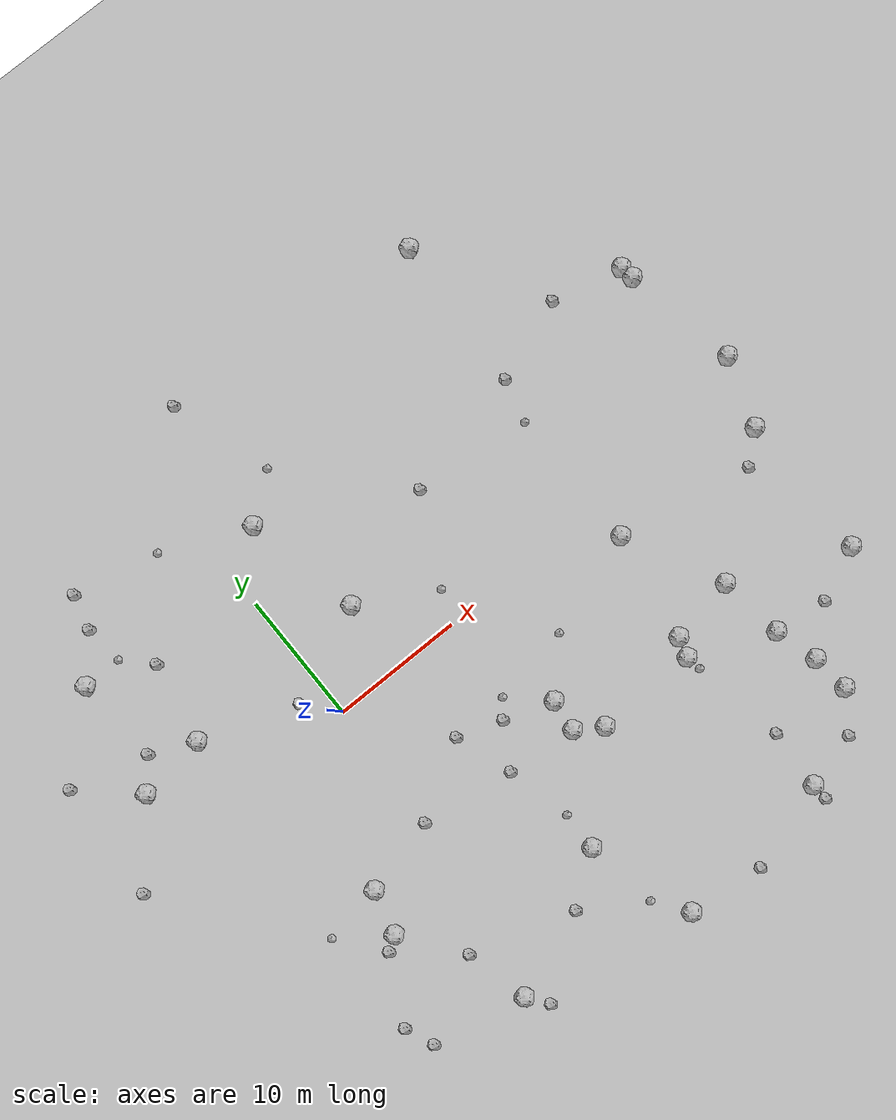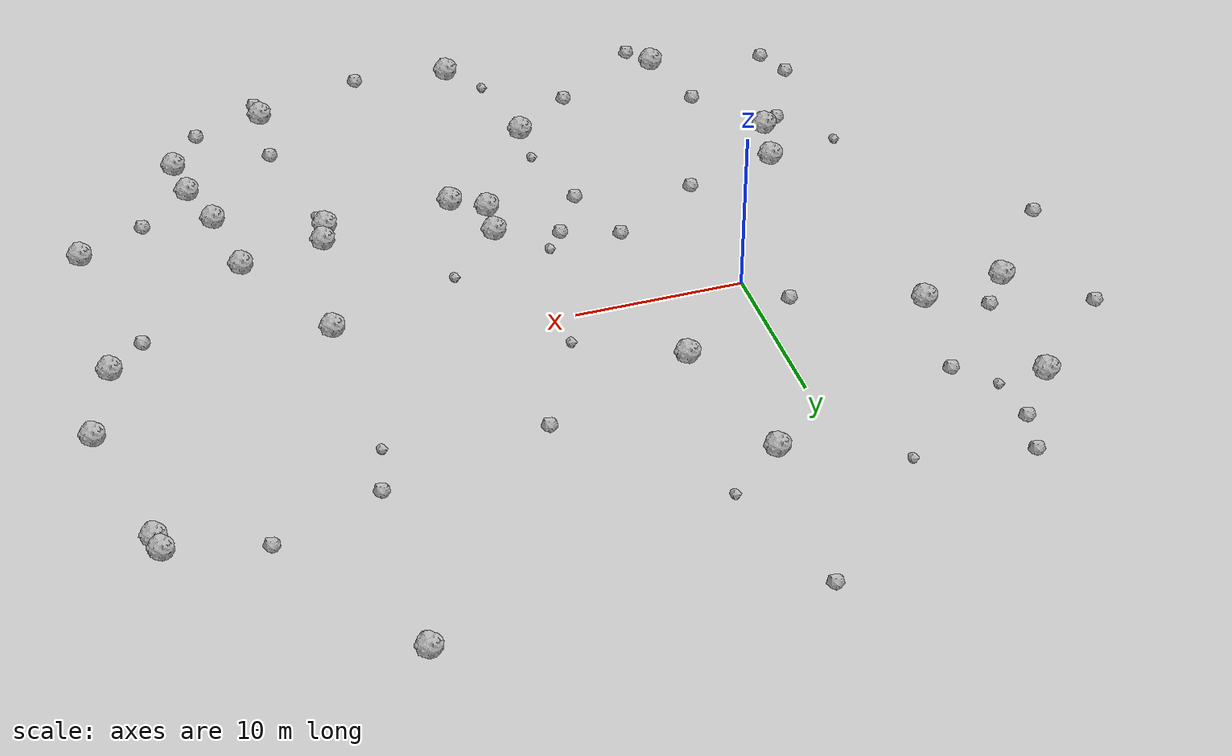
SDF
<sdf version="1.6">
 <world name="default">
  <include><uri>model://custom_ground</uri></include>
  <include><uri>model://sun</uri></include>
  <model name="rock1_0_0">
   <include><uri>model://rock1</uri><pose>10.353534659500475 -26.485820144668452 0.5 0 0 0</pose></include>
  </model>
  <model name="rock1_0_1">
   <include><uri>model://rock1</uri><pose>25.045041076871804 23.3982828396207 0.5 0 0 0</pose></include>
  </model>
  <model name="rock1_0_2">
   <include><uri>model://rock1</uri><pose>12.26940076858321 -8.898860153860145 0.5 0 0 0</pose></include>
  </model>
  <model name="rock1_0_3">
   <include><uri>model://rock1</uri><pose>27.81129628913171 -15.08280284263276 0.5 0 0 0</pose></include>
  </model>
  <model name="rock1_0_4">
   <include><uri>model://rock1</uri><pose>3.431283467191278 14.50852252464503 0.5 0 0 0</pose></include>
  </model>
  <model name="rock1_0_5">
   <include><uri>model://rock1</uri><pose>22.76654954815104 -25.10561689154749 0.5 0 0 0</pose></include>
  </model>
  <model name="rock1_0_6">
   <include><uri>model://rock1</uri><pose>35.93048079093833 -13.789267911669828 0.5 0 0 0</pose></include>
  </model>
  <model name="rock1_0_7">
   <include><uri>model://rock1</uri><pose>36.18989034486985 12.484855941916905 0.5 0 0 0</pose></include>
  </model>
  <model name="rock1_0_8">
   <include><uri>model://rock1</uri><pose>-6.867789546782468 -14.523020029441085 0.5 0 0 0</pose></include>
  </model>
  <model name="rock1_0_9">
   <include><uri>model://rock1</uri><pose>27.181268486295245 -10.131133207365842 0.5 0 0 0</pose></include>
  </model>
  <model name="rock1_0_10">
   <include><uri>model://rock1</uri><pose>22.10241037312138 -11.004564445049201 0.5 0 0 0</pose></include>
  </model>
  <model name="rock1_0_11">
   <include><uri>model://rock1</uri><pose>-13.004976365794992 12.954975235473746 0.5 0 0 0</pose></include>
  </model>
  <model name="rock1_0_12">
   <include><uri>model://rock1</uri><pose>-14.346528407437782 4.216435102887608 0.5 0 0 0</pose></include>
  </model>
  <model name="rock1_0_13">
   <include><uri>model://rock1</uri><pose>-2.503765077275048 -23.61104823280911 0.5 0 0 0</pose></include>
  </model>
  <model name="rock1_0_14">
   <include><uri>model://rock1</uri><pose>7.764807040509602 -18.589719966027726 0.5 0 0 0</pose></include>
  </model>
  <model name="rock1_0_15">
   <include><uri>model://rock1</uri><pose>23.53524599694542 -2.7545416927854163 0.5 0 0 0</pose></include>
  </model>
  <model name="rock1_0_16">
   <include><uri>model://rock1</uri><pose>-6.015940435910574 -11.233409011737088 0.5 0 0 0</pose></include>
  </model>
  <model name="rock1_0_17">
   <include><uri>model://rock1</uri><pose>37.993736004612714 2.525454313007245 0.5 0 0 0</pose></include>
  </model>
  <model name="rock1_0_18">
   <include><uri>model://rock1</uri><pose>5.322530658452642 5.559652756705503 0.5 0 0 0</pose></include>
  </model>
  <model name="rock1_0_19">
   <include><uri>model://rock1</uri><pose>12.00117200594876 -11.327752025288607 0.5 0 0 0</pose></include>
  </model>
  <model name="rock1_0_20">
   <include><uri>model://rock1</uri><pose>36.137777541261755 -2.7672222036140113 0.5 0 0 0</pose></include>
  </model>
  <model name="rock1_0_21">
   <include><uri>model://rock1</uri><pose>28.71049018036834 -18.36087743219004 0.5 0 0 0</pose></include>
  </model>
  <model name="rock1_0_22">
   <include><uri>model://rock1</uri><pose>28.96944864342838 -21.230283381374058 0.5 0 0 0</pose></include>
  </model>
  <model name="rock1_0_23">
   <include><uri>model://rock1</uri><pose>-9.234408368107744 4.875648324954142 0.5 0 0 0</pose></include>
  </model>
  <model name="rock1_0_24">
   <include><uri>model://rock1</uri><pose>36.366016415004864 11.40311303094743 0.5 0 0 0</pose></include>
  </model>
  <model name="rock1_0_25">
   <include><uri>model://rock1</uri><pose>21.633723734797613 -12.48264653880858 0.5 0 0 0</pose></include>
  </model>
  <model name="rock1_0_26">
   <include><uri>model://rock1</uri><pose>13.9449572687124 -12.595609178173078 0.5 0 0 0</pose></include>
  </model>
  <model name="rock2_0_0">
   <include><uri>model://rock2</uri><pose>16.11125227073549 -27.221403389869614 0.3 0 0 0</pose></include>
  </model>
  <model name="rock2_0_1">
   <include><uri>model://rock2</uri><pose>6.6393150016273985 -10.85607960643862 0.3 0 0 0</pose></include>
  </model>
  <model name="rock2_0_2">
   <include><uri>model://rock2</uri><pose>-8.188503412234041 11.062225208194882 0.3 0 0 0</pose></include>
  </model>
  <model name="rock2_0_3">
   <include><uri>model://rock2</uri><pose>30.712658321103184 13.78832300893847 0.3 0 0 0</pose></include>
  </model>
  <model name="rock2_0_4">
   <include><uri>model://rock2</uri><pose>-9.737667927949614 18.7649281970646 0.3 0 0 0</pose></include>
  </model>
  <model name="rock2_0_5">
   <include><uri>model://rock2</uri><pose>-18.92363509248398 -1.1414484592653054 0.3 0 0 0</pose></include>
  </model>
  <model name="rock2_0_6">
   <include><uri>model://rock2</uri><pose>-10.429916431454611 -20.04988269685863 0.3 0 0 0</pose></include>
  </model>
  <model name="rock2_0_7">
   <include><uri>model://rock2</uri><pose>-1.4148860128047325 -25.180633476344806 0.3 0 0 0</pose></include>
  </model>
  <model name="rock2_0_8">
   <include><uri>model://rock2</uri><pose>4.052366331668583 -21.295080060732403 0.3 0 0 0</pose></include>
  </model>
  <model name="rock2_0_9">
   <include><uri>model://rock2</uri><pose>-10.431789595978875 16.08690875752712 0.3 0 0 0</pose></include>
  </model>
  <model name="rock2_0_10">
   <include><uri>model://rock2</uri><pose>4.358529456318948 25.097020412433757 0.3 0 0 0</pose></include>
  </model>
  <model name="rock2_0_11">
   <include><uri>model://rock2</uri><pose>23.083309696370343 -20.692071618297007 0.3 0 0 0</pose></include>
  </model>
  <model name="rock2_0_12">
   <include><uri>model://rock2</uri><pose>31.910488822555095 -15.622460306529824 0.3 0 0 0</pose></include>
  </model>
  <model name="rock2_0_13">
   <include><uri>model://rock2</uri><pose>-7.985096026481397 -15.2279728868045 0.3 0 0 0</pose></include>
  </model>
  <model name="rock2_0_14">
   <include><uri>model://rock2</uri><pose>5.18093146841581 -6.514592742579467 0.3 0 0 0</pose></include>
  </model>
  <model name="rock2_0_15">
   <include><uri>model://rock2</uri><pose>-0.3584529870542106 -9.808946845722005 0.3 0 0 0</pose></include>
  </model>
  <model name="rock2_0_16">
   <include><uri>model://rock2</uri><pose>14.402634952810708 9.028583531330952 0.3 0 0 0</pose></include>
  </model>
  <model name="rock2_0_17">
   <include><uri>model://rock2</uri><pose>-3.702483994070384 -18.933836265885333 0.3 0 0 0</pose></include>
  </model>
  <model name="rock2_0_18">
   <include><uri>model://rock2</uri><pose>8.550882017220719 -7.666762801438935 0.3 0 0 0</pose></include>
  </model>
  <model name="rock2_0_19">
   <include><uri>model://rock2</uri><pose>-1.998712934579057 2.3978328522374355 0.3 0 0 0</pose></include>
  </model>
  <model name="rock2_0_20">
   <include><uri>model://rock2</uri><pose>-9.541593773949062 -22.19643291834767 0.3 0 0 0</pose></include>
  </model>
  <model name="rock2_0_21">
   <include><uri>model://rock2</uri><pose>24.32797845993108 11.429035219479644 0.3 0 0 0</pose></include>
  </model>
  <model name="rock2_0_22">
   <include><uri>model://rock2</uri><pose>-18.49181494383684 7.910000806333933 0.3 0 0 0</pose></include>
  </model>
  <model name="rock2_0_23">
   <include><uri>model://rock2</uri><pose>26.987171840242873 -24.061173489951774 0.3 0 0 0</pose></include>
  </model>
  <model name="rock2_0_24">
   <include><uri>model://rock2</uri><pose>-12.63742442365434 6.4061549035695435 0.3 0 0 0</pose></include>
  </model>
  <model name="rock2_0_25">
   <include><uri>model://rock2</uri><pose>33.93595414910494 -4.711348050006329 0.3 0 0 0</pose></include>
  </model>
  <model name="rock2_0_26">
   <include><uri>model://rock2</uri><pose>22.830058725323923 -26.408197162141075 0.3 0 0 0</pose></include>
  </model>
  <model name="rock3_0_0">
   <include><uri>model://rock3</uri><pose>8.56101677509021 -24.167930803212837 0.2 0 0 0</pose></include>
  </model>
  <model name="rock3_0_1">
   <include><uri>model://rock3</uri><pose>6.761542462029453 17.191552387644947 0.2 0 0 0</pose></include>
  </model>
  <model name="rock3_0_2">
   <include><uri>model://rock3</uri><pose>15.612438918579933 -5.408125672586728 0.2 0 0 0</pose></include>
  </model>
  <model name="rock3_0_3">
   <include><uri>model://rock3</uri><pose>11.032789261918548 2.3943340289514126 0.2 0 0 0</pose></include>
  </model>
  <model name="rock3_0_4">
   <include><uri>model://rock3</uri><pose>9.543849903816856 -6.406105116583024 0.2 0 0 0</pose></include>
  </model>
  <model name="rock3_0_5">
   <include><uri>model://rock3</uri><pose>7.809709750680064 -15.780000358705939 0.2 0 0 0</pose></include>
  </model>
  <model name="rock3_0_6">
   <include><uri>model://rock3</uri><pose>-10.561254310006994 -12.001210107637686 0.2 0 0 0</pose></include>
  </model>
  <model name="rock3_0_7">
   <include><uri>model://rock3</uri><pose>-3.2309085002253966 17.35174899467586 0.2 0 0 0</pose></include>
  </model>
  <model name="rock3_0_8">
   <include><uri>model://rock3</uri><pose>-10.173461811593349 13.04031017017946 0.2 0 0 0</pose></include>
  </model>
  <model name="rock3_0_9">
   <include><uri>model://rock3</uri><pose>23.43591487632429 8.062029808977428 0.2 0 0 0</pose></include>
  </model>
  <model name="rock3_0_10">
   <include><uri>model://rock3</uri><pose>21.815970133291046 -13.728194407260482 0.2 0 0 0</pose></include>
  </model>
 </world>
</sdf>
